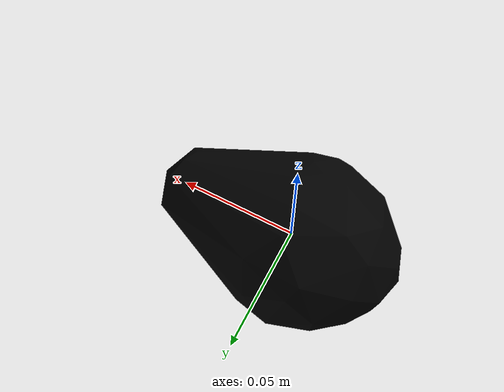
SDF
<?xml version="1.0"?>
<sdf version="1.4">
  <model name="016_pear_textured">
    <pose>0 0 0  0 0 0</pose>
    <link name="body">
      <inertial>
        <mass> 1.0 </mass>
        <pose>0 0 0 0 0 0</pose>
        <inertia>
          <ixx>0.00040167517401947276</ixx>
          <ixy>0.0</ixy>
          <ixz>0.0</ixz>
          <iyy>0.0006663556017638859</iyy>
          <iyz>0.0</iyz>
          <izz>0.0006800177166866412</izz>
        </inertia>
      </inertial>
      <visual name="visual">
        <geometry>
          <mesh>
            <uri>model://016_pear_textured/textured.dae</uri>
          </mesh>
        </geometry>
        <pose>0.0016366442224966028 -0.0020054815861390092 -0.04557881854864522 0.39883260124585707 0.7471923235943795 -1.485463416979625</pose>
      </visual>
      <collision name="collision">
        <geometry>
          <mesh>
            <uri>model://016_pear_textured/textured.col.dae</uri>
          </mesh>
        </geometry>
        <max_contacts>10</max_contacts>
        <surface>
          <friction>
            <ode>
              <mu>0.8</mu>
              <mu2>0.8</mu2>
              <slip1>0</slip1>
              <slip2>0</slip2>
            </ode>
            <torsional>
              <ode/>
            </torsional>
          </friction>
          <contact>
            <ode>
              <kp>1000000.0</kp>
              <kd>1.0</kd>
              <max_vel>0.0</max_vel>
            </ode>
          </contact>
        </surface>
        <pose>0.0016366442224966028 -0.0020054815861390092 -0.04557881854864522 0.39883260124585707 0.7471923235943795 -1.485463416979625</pose>
      </collision>
    </link>
  </model>
</sdf>
